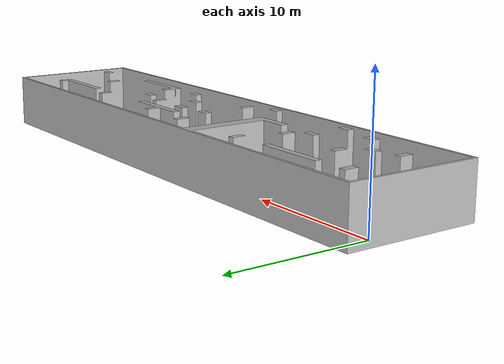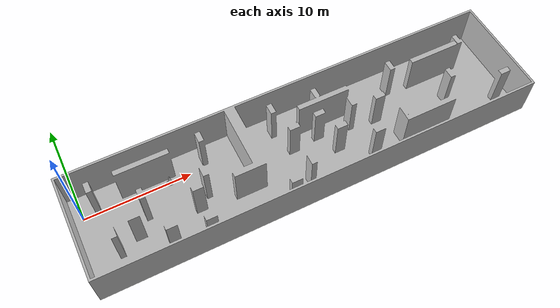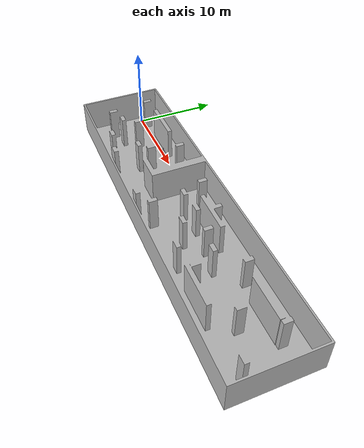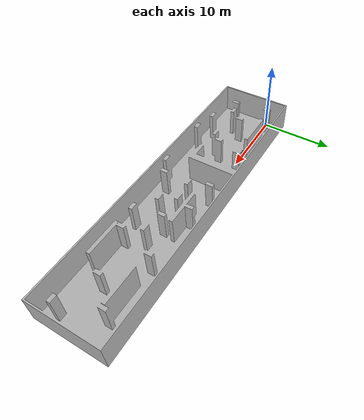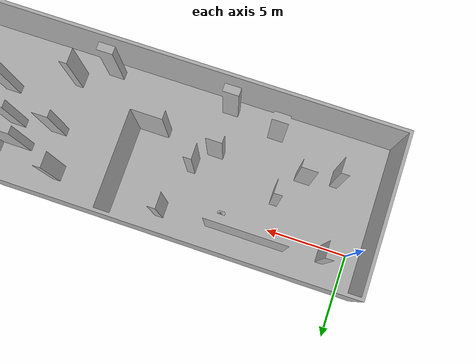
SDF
<sdf version="1.4">
 <world name="world">
  <model name="ground_plane">
   <static>1</static>
   <link name="link">
    <collision name="collision">
     <geometry><plane><normal>0 0 1</normal><size>100 100</size></plane></geometry>
     <surface><friction><ode><mu>100</mu><mu2>50</mu2></ode></friction></surface>
    </collision>
    <velocity_decay><linear>0</linear><angular>0</angular></velocity_decay>
   </link>
  </model>
  <model name="corridor">
   <static>1</static>
   <link name="body">
    <visual name="visual">
     <pose>0 -2.5 -0.01 0 -0 0</pose>
     <geometry><mesh><uri>model://corridor/corridor.dae</uri></mesh></geometry>
    </visual>
    <collision name="collision">
     <pose>0 -2.5 -0.01 0 -0 0</pose>
     <geometry><mesh><uri>model://corridor/corridor.stl</uri></mesh></geometry>
    </collision>
    <velocity_decay><linear>0</linear><angular>0</angular></velocity_decay>
   </link>
  </model>
  <light name="sun_direct" type="directional">
   <pose>0 0 10 0 -0 0</pose>
   <diffuse>0.8 0.8 0.8 1</diffuse>
   <specular>0.2 0.2 0.2 1</specular>
   <attenuation>
    <range>20</range>
    <constant>0.9</constant>
    <linear>0.01</linear>
    <quadratic>0.001</quadratic>
   </attenuation>
   <direction>-0 0 -1</direction>
  </light>
  <light name="sun_left" type="directional">
   <pose>10 0 10 0 -0 0</pose>
   <diffuse>0.8 0.8 0.8 1</diffuse>
   <specular>0.2 0.2 0.2 1</specular>
   <attenuation>
    <range>20</range>
    <constant>0.9</constant>
    <linear>0.01</linear>
    <quadratic>0.001</quadratic>
   </attenuation>
   <direction>-1 0 -1</direction>
  </light>
  <physics type="ode">
   <max_step_size>0.001</max_step_size>
   <real_time_factor>1</real_time_factor>
   <real_time_update_rate>1000</real_time_update_rate>
   <gravity>0 0 -9.8</gravity>
  </physics>
  <scene><ambient>0.4 0.4 0.4 1</ambient><background>0.7 0.7 0.7 1</background><shadows>1</shadows></scene>
  <spherical_coordinates>
   <surface_model>EARTH_WGS84</surface_model>
   <latitude_deg>0</latitude_deg>
   <longitude_deg>0</longitude_deg>
   <elevation>0</elevation>
   <heading_deg>0</heading_deg>
  </spherical_coordinates>
  <model name="Construction Cone">
   <link name="link">
    <collision name="collision">
     <geometry>
      <mesh><scale>10 10 10</scale><uri>model://construction_cone/meshes/construction_cone.dae</uri></mesh>
     </geometry>
    </collision>
    <visual name="visual">
     <geometry>
      <mesh><scale>10 10 10</scale><uri>model://construction_cone/meshes/construction_cone.dae</uri></mesh>
     </geometry>
    </visual>
    <velocity_decay><linear>0</linear><angular>0</angular></velocity_decay>
    <inertial>
     <inertia><ixx>1</ixx><ixy>0</ixy><ixz>0</ixz><iyy>1</iyy><iyz>0</iyz><izz>1</izz></inertia>
     <mass>1</mass>
    </inertial>
   </link>
   <pose>8 -0 0 1e-06 1e-06 0</pose>
   <static>0</static>
  </model>
 </world>
</sdf>
